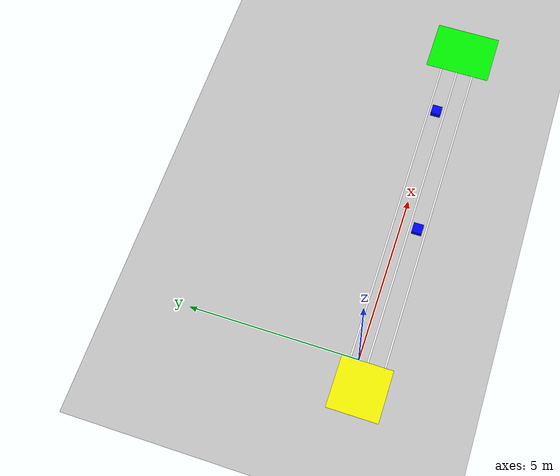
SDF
<sdf version='1.10'>
  <world name='myworld'>
    <physics name='1ms' type='ignored'>
      <max_step_size>0.001</max_step_size>
      <real_time_factor>1</real_time_factor>
      <real_time_update_rate>1000</real_time_update_rate>
    </physics>
    <plugin name='gz::sim::systems::Physics' filename='gz-sim-physics-system'/>
    <plugin name='gz::sim::systems::UserCommands' filename='gz-sim-user-commands-system'/>
    <plugin name='gz::sim::systems::SceneBroadcaster' filename='gz-sim-scene-broadcaster-system'/>
    <plugin name='gz::sim::systems::Sensors' filename='gz-sim-sensors-system'>
      <render_engine>ogre2</render_engine>
    </plugin>
    <plugin name='gz::sim::systems::Contact' filename='gz-sim-contact-system'/>
    <gravity>0 0 -9.8000000000000007</gravity>
    <magnetic_field>5.5644999999999998e-06 2.2875799999999999e-05 -4.2388400000000002e-05</magnetic_field>
    <atmosphere type='adiabatic'/>
    <scene>
      <ambient>0.400000006 0.400000006 0.400000006 1</ambient>
      <background>0.699999988 0.699999988 0.699999988 1</background>
      <shadows>true</shadows>
    </scene>

    <model name="lane_lines">
      <static>true</static>
      <link name="link">
        <visual name="left_line_visual">
          <pose>5 0.25 0.001 0 0 0</pose>
          <geometry>
            <box>
              <size>10 0.05 0.001</size>
            </box>
          </geometry>
          <material>
            <ambient>1 1 1 1</ambient>
            <diffuse>1 1 1 1</diffuse>
            <specular>0.1 0.1 0.1 1</specular>
          </material>
        </visual>
        <visual name="right_line_visual">
          <pose>5 -0.25 0.001 0 0 0</pose>
          <geometry>
            <box>
              <size>10 0.05 0.001</size>
            </box>
          </geometry>
          <material>
            <ambient>1 1 1 1</ambient>
            <diffuse>1 1 1 1</diffuse>
            <specular>0.1 0.1 0.1 1</specular>
          </material>
        </visual>
        <visual name="very_left_line_visual">
          <pose>5 -0.75 0.001 0 0 0</pose>
          <geometry>
            <box>
              <size>10 0.05 0.001</size>
            </box>
          </geometry>
          <material>
            <ambient>1 1 1 1</ambient>
            <diffuse>1 1 1 1</diffuse>
            <specular>0.1 0.1 0.1 1</specular>
          </material>
        </visual>
      </link>
    </model>

    <model name="finish_line">
      <static>true</static>
      <link name="link">
      <visual name="finish_line_visual">
        <pose>10.6 -0.25 0.002 0 0 1.57</pose>
        <geometry>
          <box>
            <size>2.0 1.6 0.001</size>
          </box>
        </geometry>
        <material>
          <ambient>0 1 0 1</ambient>
          <diffuse>0 1 0 1</diffuse>
          <specular>0.1 0.1 0.1 1</specular>
        </material>
      </visual>
      </link>
    </model>

    <model name="starting_line">
      <static>true</static>
      <link name="link">
        <visual name="starting_line_visual">
          <pose>-0.75 -0.25 0.002 0 0 1.57</pose>
          <geometry>
            <box>
              <size>1.5 1.5 0.001</size>
            </box>
          </geometry>
        <material>
          <ambient>1 1 0 1</ambient>
          <diffuse>1 1 0 1</diffuse>
          <specular>0.1 0.1 0.1 1</specular>
        </material>
        </visual>
      </link>
    </model>

    <model name='blue_cube_1'>
      <pose>4.2 -0.5 0.002 0 0 0</pose>
      <static>false</static>
      <link name='link'>
        <inertial>
          <mass>1.0</mass>
          <inertia>
            <ixx>0.0267</ixx>
            <ixy>0</ixy>
            <ixz>0</ixz>
            <iyy>0.0267</iyy>
            <iyz>0</iyz>
            <izz>0.0267</izz>
          </inertia>
        </inertial>
        <visual name='visual'>
          <geometry>
            <box>
              <size>0.3 0.3 0.3</size>
            </box>
          </geometry>
          <material>
            <ambient>0 0 1 1</ambient>
            <diffuse>0 0 1 1</diffuse>
            <specular>0.1 0.1 0.1 1</specular>
          </material>
        </visual>
        <collision name='collision'>
          <geometry>
            <box>
              <size>0.4 0.4 0.4</size>
            </box>
          </geometry>
        </collision>
      </link>
    </model>

    <model name='blue_cube_2'>
      <pose>8.2 0 0.002 0 0 0</pose>
      <static>false</static>
      <link name='link'>
        <inertial>
          <mass>1.0</mass>
          <inertia>
            <ixx>0.0267</ixx>
            <ixy>0</ixy>
            <ixz>0</ixz>
            <iyy>0.0267</iyy>
            <iyz>0</iyz>
            <izz>0.0267</izz>
          </inertia>
        </inertial>
        <visual name='visual'>
          <geometry>
            <box>
              <size>0.3 0.3 0.3</size>
            </box>
          </geometry>
          <material>
            <ambient>0 0 1 1</ambient>
            <diffuse>0 0 1 1</diffuse>
            <specular>0.1 0.1 0.1 1</specular>
          </material>
        </visual>
        <collision name='collision'>
          <geometry>
            <box>
              <size>0.3 0.3 0.3</size>
            </box>
          </geometry>
        </collision>
      </link>
    </model>

    <gui fullscreen='0'>
      <camera name='user_camera'>
        <pose frame=''>-8 0 0.5 0 0.4 0</pose>
        <track_visual>
          <name>robot</name>
          <static>false</static>
          <use_model_frame>true</use_model_frame>
          <xyz>-2 0 1.0</xyz>
          <inherit_yaw>true</inherit_yaw>
        </track_visual>
      </camera>
    </gui>

    <model name='ground_plane'>
      <static>true</static>
      <link name='link'>
        <collision name='collision'>
          <geometry>
            <plane>
              <normal>0 0 1</normal>
              <size>100 100</size>
            </plane>
          </geometry>
          <surface>
            <friction>
              <ode/>
            </friction>
            <bounce/>
            <contact/>
          </surface>
        </collision>
        <visual name='visual'>
          <geometry>
            <plane>
              <normal>0 0 1</normal>
              <size>100 100</size>
            </plane>
          </geometry>
          <material>
            <ambient>0.800000012 0.800000012 0.800000012 1</ambient>
            <diffuse>0.800000012 0.800000012 0.800000012 1</diffuse>
            <specular>0.800000012 0.800000012 0.800000012 1</specular>
          </material>
        </visual>
        <pose>0 0 0 0 0 0</pose>
        <inertial>
          <pose>0 0 0 0 0 0</pose>
          <mass>1</mass>
          <inertia>
            <ixx>1</ixx>
            <ixy>0</ixy>
            <ixz>0</ixz>
            <iyy>1</iyy>
            <iyz>0</iyz>
            <izz>1</izz>
          </inertia>
        </inertial>
        <enable_wind>false</enable_wind>
      </link>
      <pose>0 0 0 0 0 0</pose>
      <self_collide>false</self_collide>
    </model>
    <light name='sun' type='directional'>
      <pose>0 0 10 0 0 0</pose>
      <cast_shadows>true</cast_shadows>
      <intensity>1</intensity>
      <direction>-0.5 0.10000000000000001 -0.90000000000000002</direction>
      <diffuse>0.800000012 0.800000012 0.800000012 1</diffuse>
      <specular>0.200000003 0.200000003 0.200000003 1</specular>
      <attenuation>
        <range>1000</range>
        <linear>0.01</linear>
        <constant>0.90000000000000002</constant>
        <quadratic>0.001</quadratic>
      </attenuation>
      <spot>
        <inner_angle>0</inner_angle>
        <outer_angle>0</outer_angle>
        <falloff>0</falloff>
      </spot>
    </light>
  </world>
</sdf>
